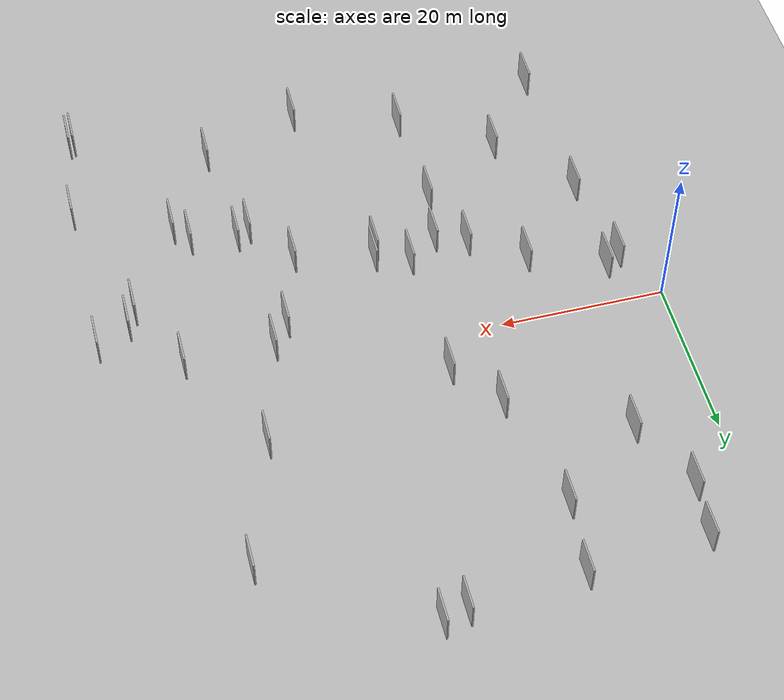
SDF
<?xml version="1.0" encoding="utf-8"?>

<sdf version="1.6">

   <world name="default">

      <gui fullscreen="0">

         <camera name="user_camera">

            <pose>-15 0 4.57585 0 0 0</pose>

            <view_controller>orbit</view_controller>

         </camera>

      </gui>

      <scene>

         <sky>

           <clouds>

             <speed>12</speed>

           </clouds>

         </sky>

         <ambient>0.4 0.4 0.4 1</ambient>

         <background>0.7 0.7 0.7 1</background>

         <shadows>1</shadows>

      </scene>

      <gravity>0 0 -9.8066</gravity>

      <magnetic_field>6e-06 2.3e-05 -4.2e-05</magnetic_field>

      <physics default="0" name="default_physics" type="ode">

         <ode>

            <solver>

               <type>quick</type>

               <iters>10</iters>

               <sor>1.0</sor>

               <use_dynamic_moi_rescaling>0</use_dynamic_moi_rescaling>

            </solver>

            <constraints>

               <cfm>0</cfm>

               <erp>0.2</erp>

               <contact_max_correcting_vel>100</contact_max_correcting_vel>

               <contact_surface_layer>0.001</contact_surface_layer>

            </constraints>

         </ode>

         <max_step_size>0.004</max_step_size>

         <real_time_factor>1</real_time_factor>

         <real_time_update_rate>250</real_time_update_rate>

      </physics>

      <light name="sun" type="directional">

         <cast_shadows>1</cast_shadows>

         <pose>0 0 10 0 0 0</pose>

         <diffuse>0.8 0.8 0.8 1</diffuse>

         <specular>0.2 0.2 0.2 1</specular>

         <attenuation>

            <range>1000</range>

            <constant>0.9</constant>

            <linear>0.01</linear>

            <quadratic>0.001</quadratic>

         </attenuation>

         <direction>-0.5 0.1 -0.9</direction>

      </light>

      <include>

         <name>ground_plane_1</name>

         <uri>model://HANNAS_ground_plane</uri>

         <pose>0 0 0  0 0 0</pose>

      </include>

      <include>

         <name>ground_plane_2</name>

         <uri>model://HANNAS_ground_plane</uri>

         <pose>100 0 0  0 0 0</pose>

      </include>

      <model name="HANNAS_wall_1">

         <static>1</static>

         <pose frame="">67.3452 -6.3178 2.5 0.000000 0.000000 1.570796</pose>

         <link name="link">

            <pose frame="">0 0 2.00 0 0 0</pose>

            <collision name="collision">

               <geometry>

                  <box>

                     <size>4.00 0.2 4.00</size>

                  </box>

               </geometry>

               <max_contacts>10</max_contacts>

               <surface>

                  <contact>

                     <ode/>

                  </contact>

                  <bounce/>

                  <friction>

                     <torsional>

                        <ode/>

                     </torsional>

                     <ode/>

                  </friction>

               </surface>

            </collision>

            <visual name="visual">

               <cast_shadows>0</cast_shadows>

               <geometry>

                  <box>

                     <size>4.00 0.2 4.00</size>

                  </box>

               </geometry>

               <material>

                  <script>

                     <uri>model://HANNAS_wall/materials/scripts</uri>

                     <uri>model://HANNAS_wall/materials/textures</uri>

                     <name>vrc/HANNAS_wall</name>

                  </script>

               </material>

            </visual>

            <self_collide>0</self_collide>

            <enable_wind>0</enable_wind>

            <kinematic>0</kinematic>

         </link>

      </model>

      <model name="HANNAS_wall_2">

         <static>1</static>

         <pose frame="">32.9440 -11.5785 2.5 0.000000 0.000000 1.570796</pose>

         <link name="link">

            <pose frame="">0 0 2.00 0 0 0</pose>

            <collision name="collision">

               <geometry>

                  <box>

                     <size>4.00 0.2 4.00</size>

                  </box>

               </geometry>

               <max_contacts>10</max_contacts>

               <surface>

                  <contact>

                     <ode/>

                  </contact>

                  <bounce/>

                  <friction>

                     <torsional>

                        <ode/>

                     </torsional>

                     <ode/>

                  </friction>

               </surface>

            </collision>

            <visual name="visual">

               <cast_shadows>0</cast_shadows>

               <geometry>

                  <box>

                     <size>4.00 0.2 4.00</size>

                  </box>

               </geometry>

               <material>

                  <script>

                     <uri>model://HANNAS_wall/materials/scripts</uri>

                     <uri>model://HANNAS_wall/materials/textures</uri>

                     <name>vrc/HANNAS_wall</name>

                  </script>

               </material>

            </visual>

            <self_collide>0</self_collide>

            <enable_wind>0</enable_wind>

            <kinematic>0</kinematic>

         </link>

      </model>

      <model name="HANNAS_wall_3">

         <static>1</static>

         <pose frame="">21.5098 36.1997 2.5 0.000000 0.000000 1.570796</pose>

         <link name="link">

            <pose frame="">0 0 2.00 0 0 0</pose>

            <collision name="collision">

               <geometry>

                  <box>

                     <size>4.00 0.2 4.00</size>

                  </box>

               </geometry>

               <max_contacts>10</max_contacts>

               <surface>

                  <contact>

                     <ode/>

                  </contact>

                  <bounce/>

                  <friction>

                     <torsional>

                        <ode/>

                     </torsional>

                     <ode/>

                  </friction>

               </surface>

            </collision>

            <visual name="visual">

               <cast_shadows>0</cast_shadows>

               <geometry>

                  <box>

                     <size>4.00 0.2 4.00</size>

                  </box>

               </geometry>

               <material>

                  <script>

                     <uri>model://HANNAS_wall/materials/scripts</uri>

                     <uri>model://HANNAS_wall/materials/textures</uri>

                     <name>vrc/HANNAS_wall</name>

                  </script>

               </material>

            </visual>

            <self_collide>0</self_collide>

            <enable_wind>0</enable_wind>

            <kinematic>0</kinematic>

         </link>

      </model>

      <model name="HANNAS_wall_4">

         <static>1</static>

         <pose frame="">24.1270 -19.3537 2.5 0.000000 0.000000 1.570796</pose>

         <link name="link">

            <pose frame="">0 0 2.00 0 0 0</pose>

            <collision name="collision">

               <geometry>

                  <box>

                     <size>4.00 0.2 4.00</size>

                  </box>

               </geometry>

               <max_contacts>10</max_contacts>

               <surface>

                  <contact>

                     <ode/>

                  </contact>

                  <bounce/>

                  <friction>

                     <torsional>

                        <ode/>

                     </torsional>

                     <ode/>

                  </friction>

               </surface>

            </collision>

            <visual name="visual">

               <cast_shadows>0</cast_shadows>

               <geometry>

                  <box>

                     <size>4.00 0.2 4.00</size>

                  </box>

               </geometry>

               <material>

                  <script>

                     <uri>model://HANNAS_wall/materials/scripts</uri>

                     <uri>model://HANNAS_wall/materials/textures</uri>

                     <name>vrc/HANNAS_wall</name>

                  </script>

               </material>

            </visual>

            <self_collide>0</self_collide>

            <enable_wind>0</enable_wind>

            <kinematic>0</kinematic>

         </link>

      </model>

      <model name="HANNAS_wall_5">

         <static>1</static>

         <pose frame="">6.2242 -16.3938 2.5 0.000000 0.000000 1.570796</pose>

         <link name="link">

            <pose frame="">0 0 2.00 0 0 0</pose>

            <collision name="collision">

               <geometry>

                  <box>

                     <size>4.00 0.2 4.00</size>

                  </box>

               </geometry>

               <max_contacts>10</max_contacts>

               <surface>

                  <contact>

                     <ode/>

                  </contact>

                  <bounce/>

                  <friction>

                     <torsional>

                        <ode/>

                     </torsional>

                     <ode/>

                  </friction>

               </surface>

            </collision>

            <visual name="visual">

               <cast_shadows>0</cast_shadows>

               <geometry>

                  <box>

                     <size>4.00 0.2 4.00</size>

                  </box>

               </geometry>

               <material>

                  <script>

                     <uri>model://HANNAS_wall/materials/scripts</uri>

                     <uri>model://HANNAS_wall/materials/textures</uri>

                     <name>vrc/HANNAS_wall</name>

                  </script>

               </material>

            </visual>

            <self_collide>0</self_collide>

            <enable_wind>0</enable_wind>

            <kinematic>0</kinematic>

         </link>

      </model>

      <model name="HANNAS_wall_6">

         <static>1</static>

         <pose frame="">10.6288 19.6014 2.5 0.000000 0.000000 1.570796</pose>

         <link name="link">

            <pose frame="">0 0 2.00 0 0 0</pose>

            <collision name="collision">

               <geometry>

                  <box>

                     <size>4.00 0.2 4.00</size>

                  </box>

               </geometry>

               <max_contacts>10</max_contacts>

               <surface>

                  <contact>

                     <ode/>

                  </contact>

                  <bounce/>

                  <friction>

                     <torsional>

                        <ode/>

                     </torsional>

                     <ode/>

                  </friction>

               </surface>

            </collision>

            <visual name="visual">

               <cast_shadows>0</cast_shadows>

               <geometry>

                  <box>

                     <size>4.00 0.2 4.00</size>

                  </box>

               </geometry>

               <material>

                  <script>

                     <uri>model://HANNAS_wall/materials/scripts</uri>

                     <uri>model://HANNAS_wall/materials/textures</uri>

                     <name>vrc/HANNAS_wall</name>

                  </script>

               </material>

            </visual>

            <self_collide>0</self_collide>

            <enable_wind>0</enable_wind>

            <kinematic>0</kinematic>

         </link>

      </model>

      <model name="HANNAS_wall_7">

         <static>1</static>

         <pose frame="">20.6657 27.3038 2.5 0.000000 0.000000 1.570796</pose>

         <link name="link">

            <pose frame="">0 0 2.00 0 0 0</pose>

            <collision name="collision">

               <geometry>

                  <box>

                     <size>4.00 0.2 4.00</size>

                  </box>

               </geometry>

               <max_contacts>10</max_contacts>

               <surface>

                  <contact>

                     <ode/>

                  </contact>

                  <bounce/>

                  <friction>

                     <torsional>

                        <ode/>

                     </torsional>

                     <ode/>

                  </friction>

               </surface>

            </collision>

            <visual name="visual">

               <cast_shadows>0</cast_shadows>

               <geometry>

                  <box>

                     <size>4.00 0.2 4.00</size>

                  </box>

               </geometry>

               <material>

                  <script>

                     <uri>model://HANNAS_wall/materials/scripts</uri>

                     <uri>model://HANNAS_wall/materials/textures</uri>

                     <name>vrc/HANNAS_wall</name>

                  </script>

               </material>

            </visual>

            <self_collide>0</self_collide>

            <enable_wind>0</enable_wind>

            <kinematic>0</kinematic>

         </link>

      </model>

      <model name="HANNAS_wall_8">

         <static>1</static>

         <pose frame="">53.9063 -19.5762 2.5 0.000000 0.000000 1.570796</pose>

         <link name="link">

            <pose frame="">0 0 2.00 0 0 0</pose>

            <collision name="collision">

               <geometry>

                  <box>

                     <size>4.00 0.2 4.00</size>

                  </box>

               </geometry>

               <max_contacts>10</max_contacts>

               <surface>

                  <contact>

                     <ode/>

                  </contact>

                  <bounce/>

                  <friction>

                     <torsional>

                        <ode/>

                     </torsional>

                     <ode/>

                  </friction>

               </surface>

            </collision>

            <visual name="visual">

               <cast_shadows>0</cast_shadows>

               <geometry>

                  <box>

                     <size>4.00 0.2 4.00</size>

                  </box>

               </geometry>

               <material>

                  <script>

                     <uri>model://HANNAS_wall/materials/scripts</uri>

                     <uri>model://HANNAS_wall/materials/textures</uri>

                     <name>vrc/HANNAS_wall</name>

                  </script>

               </material>

            </visual>

            <self_collide>0</self_collide>

            <enable_wind>0</enable_wind>

            <kinematic>0</kinematic>

         </link>

      </model>

      <model name="HANNAS_wall_9">

         <static>1</static>

         <pose frame="">49.3741 -32.3429 2.5 0.000000 0.000000 1.570796</pose>

         <link name="link">

            <pose frame="">0 0 2.00 0 0 0</pose>

            <collision name="collision">

               <geometry>

                  <box>

                     <size>4.00 0.2 4.00</size>

                  </box>

               </geometry>

               <max_contacts>10</max_contacts>

               <surface>

                  <contact>

                     <ode/>

                  </contact>

                  <bounce/>

                  <friction>

                     <torsional>

                        <ode/>

                     </torsional>

                     <ode/>

                  </friction>

               </surface>

            </collision>

            <visual name="visual">

               <cast_shadows>0</cast_shadows>

               <geometry>

                  <box>

                     <size>4.00 0.2 4.00</size>

                  </box>

               </geometry>

               <material>

                  <script>

                     <uri>model://HANNAS_wall/materials/scripts</uri>

                     <uri>model://HANNAS_wall/materials/textures</uri>

                     <name>vrc/HANNAS_wall</name>

                  </script>

               </material>

            </visual>

            <self_collide>0</self_collide>

            <enable_wind>0</enable_wind>

            <kinematic>0</kinematic>

         </link>

      </model>

      <model name="HANNAS_wall_10">

         <static>1</static>

         <pose frame="">51.0092 11.4951 2.5 0.000000 0.000000 1.570796</pose>

         <link name="link">

            <pose frame="">0 0 2.00 0 0 0</pose>

            <collision name="collision">

               <geometry>

                  <box>

                     <size>4.00 0.2 4.00</size>

                  </box>

               </geometry>

               <max_contacts>10</max_contacts>

               <surface>

                  <contact>

                     <ode/>

                  </contact>

                  <bounce/>

                  <friction>

                     <torsional>

                        <ode/>

                     </torsional>

                     <ode/>

                  </friction>

               </surface>

            </collision>

            <visual name="visual">

               <cast_shadows>0</cast_shadows>

               <geometry>

                  <box>

                     <size>4.00 0.2 4.00</size>

                  </box>

               </geometry>

               <material>

                  <script>

                     <uri>model://HANNAS_wall/materials/scripts</uri>

                     <uri>model://HANNAS_wall/materials/textures</uri>

                     <name>vrc/HANNAS_wall</name>

                  </script>

               </material>

            </visual>

            <self_collide>0</self_collide>

            <enable_wind>0</enable_wind>

            <kinematic>0</kinematic>

         </link>

      </model>

      <model name="HANNAS_wall_11">

         <static>1</static>

         <pose frame="">62.2758 -10.6423 2.5 0.000000 0.000000 1.570796</pose>

         <link name="link">

            <pose frame="">0 0 2.00 0 0 0</pose>

            <collision name="collision">

               <geometry>

                  <box>

                     <size>4.00 0.2 4.00</size>

                  </box>

               </geometry>

               <max_contacts>10</max_contacts>

               <surface>

                  <contact>

                     <ode/>

                  </contact>

                  <bounce/>

                  <friction>

                     <torsional>

                        <ode/>

                     </torsional>

                     <ode/>

                  </friction>

               </surface>

            </collision>

            <visual name="visual">

               <cast_shadows>0</cast_shadows>

               <geometry>

                  <box>

                     <size>4.00 0.2 4.00</size>

                  </box>

               </geometry>

               <material>

                  <script>

                     <uri>model://HANNAS_wall/materials/scripts</uri>

                     <uri>model://HANNAS_wall/materials/textures</uri>

                     <name>vrc/HANNAS_wall</name>

                  </script>

               </material>

            </visual>

            <self_collide>0</self_collide>

            <enable_wind>0</enable_wind>

            <kinematic>0</kinematic>

         </link>

      </model>

      <model name="HANNAS_wall_12">

         <static>1</static>

         <pose frame="">14.0313 -25.6488 2.5 0.000000 0.000000 1.570796</pose>

         <link name="link">

            <pose frame="">0 0 2.00 0 0 0</pose>

            <collision name="collision">

               <geometry>

                  <box>

                     <size>4.00 0.2 4.00</size>

                  </box>

               </geometry>

               <max_contacts>10</max_contacts>

               <surface>

                  <contact>

                     <ode/>

                  </contact>

                  <bounce/>

                  <friction>

                     <torsional>

                        <ode/>

                     </torsional>

                     <ode/>

                  </friction>

               </surface>

            </collision>

            <visual name="visual">

               <cast_shadows>0</cast_shadows>

               <geometry>

                  <box>

                     <size>4.00 0.2 4.00</size>

                  </box>

               </geometry>

               <material>

                  <script>

                     <uri>model://HANNAS_wall/materials/scripts</uri>

                     <uri>model://HANNAS_wall/materials/textures</uri>

                     <name>vrc/HANNAS_wall</name>

                  </script>

               </material>

            </visual>

            <self_collide>0</self_collide>

            <enable_wind>0</enable_wind>

            <kinematic>0</kinematic>

         </link>

      </model>

      <model name="HANNAS_wall_13">

         <static>1</static>

         <pose frame="">32.4629 -13.0872 2.5 0.000000 0.000000 1.570796</pose>

         <link name="link">

            <pose frame="">0 0 2.00 0 0 0</pose>

            <collision name="collision">

               <geometry>

                  <box>

                     <size>4.00 0.2 4.00</size>

                  </box>

               </geometry>

               <max_contacts>10</max_contacts>

               <surface>

                  <contact>

                     <ode/>

                  </contact>

                  <bounce/>

                  <friction>

                     <torsional>

                        <ode/>

                     </torsional>

                     <ode/>

                  </friction>

               </surface>

            </collision>

            <visual name="visual">

               <cast_shadows>0</cast_shadows>

               <geometry>

                  <box>

                     <size>4.00 0.2 4.00</size>

                  </box>

               </geometry>

               <material>

                  <script>

                     <uri>model://HANNAS_wall/materials/scripts</uri>

                     <uri>model://HANNAS_wall/materials/textures</uri>

                     <name>vrc/HANNAS_wall</name>

                  </script>

               </material>

            </visual>

            <self_collide>0</self_collide>

            <enable_wind>0</enable_wind>

            <kinematic>0</kinematic>

         </link>

      </model>

      <model name="HANNAS_wall_14">

         <static>1</static>

         <pose frame="">24.7097 -32.2085 2.5 0.000000 0.000000 1.570796</pose>

         <link name="link">

            <pose frame="">0 0 2.00 0 0 0</pose>

            <collision name="collision">

               <geometry>

                  <box>

                     <size>4.00 0.2 4.00</size>

                  </box>

               </geometry>

               <max_contacts>10</max_contacts>

               <surface>

                  <contact>

                     <ode/>

                  </contact>

                  <bounce/>

                  <friction>

                     <torsional>

                        <ode/>

                     </torsional>

                     <ode/>

                  </friction>

               </surface>

            </collision>

            <visual name="visual">

               <cast_shadows>0</cast_shadows>

               <geometry>

                  <box>

                     <size>4.00 0.2 4.00</size>

                  </box>

               </geometry>

               <material>

                  <script>

                     <uri>model://HANNAS_wall/materials/scripts</uri>

                     <uri>model://HANNAS_wall/materials/textures</uri>

                     <name>vrc/HANNAS_wall</name>

                  </script>

               </material>

            </visual>

            <self_collide>0</self_collide>

            <enable_wind>0</enable_wind>

            <kinematic>0</kinematic>

         </link>

      </model>

      <model name="HANNAS_wall_15">

         <static>1</static>

         <pose frame="">37.4799 -36.4075 2.5 0.000000 0.000000 1.570796</pose>

         <link name="link">

            <pose frame="">0 0 2.00 0 0 0</pose>

            <collision name="collision">

               <geometry>

                  <box>

                     <size>4.00 0.2 4.00</size>

                  </box>

               </geometry>

               <max_contacts>10</max_contacts>

               <surface>

                  <contact>

                     <ode/>

                  </contact>

                  <bounce/>

                  <friction>

                     <torsional>

                        <ode/>

                     </torsional>

                     <ode/>

                  </friction>

               </surface>

            </collision>

            <visual name="visual">

               <cast_shadows>0</cast_shadows>

               <geometry>

                  <box>

                     <size>4.00 0.2 4.00</size>

                  </box>

               </geometry>

               <material>

                  <script>

                     <uri>model://HANNAS_wall/materials/scripts</uri>

                     <uri>model://HANNAS_wall/materials/textures</uri>

                     <name>vrc/HANNAS_wall</name>

                  </script>

               </material>

            </visual>

            <self_collide>0</self_collide>

            <enable_wind>0</enable_wind>

            <kinematic>0</kinematic>

         </link>

      </model>

      <model name="HANNAS_wall_16">

         <static>1</static>

         <pose frame="">28.5188 6.7294 2.5 0.000000 0.000000 1.570796</pose>

         <link name="link">

            <pose frame="">0 0 2.00 0 0 0</pose>

            <collision name="collision">

               <geometry>

                  <box>

                     <size>4.00 0.2 4.00</size>

                  </box>

               </geometry>

               <max_contacts>10</max_contacts>

               <surface>

                  <contact>

                     <ode/>

                  </contact>

                  <bounce/>

                  <friction>

                     <torsional>

                        <ode/>

                     </torsional>

                     <ode/>

                  </friction>

               </surface>

            </collision>

            <visual name="visual">

               <cast_shadows>0</cast_shadows>

               <geometry>

                  <box>

                     <size>4.00 0.2 4.00</size>

                  </box>

               </geometry>

               <material>

                  <script>

                     <uri>model://HANNAS_wall/materials/scripts</uri>

                     <uri>model://HANNAS_wall/materials/textures</uri>

                     <name>vrc/HANNAS_wall</name>

                  </script>

               </material>

            </visual>

            <self_collide>0</self_collide>

            <enable_wind>0</enable_wind>

            <kinematic>0</kinematic>

         </link>

      </model>

      <model name="HANNAS_wall_17">

         <static>1</static>

         <pose frame="">65.6974 -38.6444 2.5 0.000000 0.000000 1.570796</pose>

         <link name="link">

            <pose frame="">0 0 2.00 0 0 0</pose>

            <collision name="collision">

               <geometry>

                  <box>

                     <size>4.00 0.2 4.00</size>

                  </box>

               </geometry>

               <max_contacts>10</max_contacts>

               <surface>

                  <contact>

                     <ode/>

                  </contact>

                  <bounce/>

                  <friction>

                     <torsional>

                        <ode/>

                     </torsional>

                     <ode/>

                  </friction>

               </surface>

            </collision>

            <visual name="visual">

               <cast_shadows>0</cast_shadows>

               <geometry>

                  <box>

                     <size>4.00 0.2 4.00</size>

                  </box>

               </geometry>

               <material>

                  <script>

                     <uri>model://HANNAS_wall/materials/scripts</uri>

                     <uri>model://HANNAS_wall/materials/textures</uri>

                     <name>vrc/HANNAS_wall</name>

                  </script>

               </material>

            </visual>

            <self_collide>0</self_collide>

            <enable_wind>0</enable_wind>

            <kinematic>0</kinematic>

         </link>

      </model>

      <model name="HANNAS_wall_18">

         <static>1</static>

         <pose frame="">23.9542 12.7164 2.5 0.000000 0.000000 1.570796</pose>

         <link name="link">

            <pose frame="">0 0 2.00 0 0 0</pose>

            <collision name="collision">

               <geometry>

                  <box>

                     <size>4.00 0.2 4.00</size>

                  </box>

               </geometry>

               <max_contacts>10</max_contacts>

               <surface>

                  <contact>

                     <ode/>

                  </contact>

                  <bounce/>

                  <friction>

                     <torsional>

                        <ode/>

                     </torsional>

                     <ode/>

                  </friction>

               </surface>

            </collision>

            <visual name="visual">

               <cast_shadows>0</cast_shadows>

               <geometry>

                  <box>

                     <size>4.00 0.2 4.00</size>

                  </box>

               </geometry>

               <material>

                  <script>

                     <uri>model://HANNAS_wall/materials/scripts</uri>

                     <uri>model://HANNAS_wall/materials/textures</uri>

                     <name>vrc/HANNAS_wall</name>

                  </script>

               </material>

            </visual>

            <self_collide>0</self_collide>

            <enable_wind>0</enable_wind>

            <kinematic>0</kinematic>

         </link>

      </model>

      <model name="HANNAS_wall_19">

         <static>1</static>

         <pose frame="">25.1887 -12.8074 2.5 0.000000 0.000000 1.570796</pose>

         <link name="link">

            <pose frame="">0 0 2.00 0 0 0</pose>

            <collision name="collision">

               <geometry>

                  <box>

                     <size>4.00 0.2 4.00</size>

                  </box>

               </geometry>

               <max_contacts>10</max_contacts>

               <surface>

                  <contact>

                     <ode/>

                  </contact>

                  <bounce/>

                  <friction>

                     <torsional>

                        <ode/>

                     </torsional>

                     <ode/>

                  </friction>

               </surface>

            </collision>

            <visual name="visual">

               <cast_shadows>0</cast_shadows>

               <geometry>

                  <box>

                     <size>4.00 0.2 4.00</size>

                  </box>

               </geometry>

               <material>

                  <script>

                     <uri>model://HANNAS_wall/materials/scripts</uri>

                     <uri>model://HANNAS_wall/materials/textures</uri>

                     <name>vrc/HANNAS_wall</name>

                  </script>

               </material>

            </visual>

            <self_collide>0</self_collide>

            <enable_wind>0</enable_wind>

            <kinematic>0</kinematic>

         </link>

      </model>

      <model name="HANNAS_wall_20">

         <static>1</static>

         <pose frame="">55.6439 -21.7636 2.5 0.000000 0.000000 1.570796</pose>

         <link name="link">

            <pose frame="">0 0 2.00 0 0 0</pose>

            <collision name="collision">

               <geometry>

                  <box>

                     <size>4.00 0.2 4.00</size>

                  </box>

               </geometry>

               <max_contacts>10</max_contacts>

               <surface>

                  <contact>

                     <ode/>

                  </contact>

                  <bounce/>

                  <friction>

                     <torsional>

                        <ode/>

                     </torsional>

                     <ode/>

                  </friction>

               </surface>

            </collision>

            <visual name="visual">

               <cast_shadows>0</cast_shadows>

               <geometry>

                  <box>

                     <size>4.00 0.2 4.00</size>

                  </box>

               </geometry>

               <material>

                  <script>

                     <uri>model://HANNAS_wall/materials/scripts</uri>

                     <uri>model://HANNAS_wall/materials/textures</uri>

                     <name>vrc/HANNAS_wall</name>

                  </script>

               </material>

            </visual>

            <self_collide>0</self_collide>

            <enable_wind>0</enable_wind>

            <kinematic>0</kinematic>

         </link>

      </model>

      <model name="HANNAS_wall_21">

         <static>1</static>

         <pose frame="">7.2097 34.9283 2.5 0.000000 0.000000 1.570796</pose>

         <link name="link">

            <pose frame="">0 0 2.00 0 0 0</pose>

            <collision name="collision">

               <geometry>

                  <box>

                     <size>4.00 0.2 4.00</size>

                  </box>

               </geometry>

               <max_contacts>10</max_contacts>

               <surface>

                  <contact>

                     <ode/>

                  </contact>

                  <bounce/>

                  <friction>

                     <torsional>

                        <ode/>

                     </torsional>

                     <ode/>

                  </friction>

               </surface>

            </collision>

            <visual name="visual">

               <cast_shadows>0</cast_shadows>

               <geometry>

                  <box>

                     <size>4.00 0.2 4.00</size>

                  </box>

               </geometry>

               <material>

                  <script>

                     <uri>model://HANNAS_wall/materials/scripts</uri>

                     <uri>model://HANNAS_wall/materials/textures</uri>

                     <name>vrc/HANNAS_wall</name>

                  </script>

               </material>

            </visual>

            <self_collide>0</self_collide>

            <enable_wind>0</enable_wind>

            <kinematic>0</kinematic>

         </link>

      </model>

      <model name="HANNAS_wall_22">

         <static>1</static>

         <pose frame="">6.9272 -35.2239 2.5 0.000000 0.000000 1.570796</pose>

         <link name="link">

            <pose frame="">0 0 2.00 0 0 0</pose>

            <collision name="collision">

               <geometry>

                  <box>

                     <size>4.00 0.2 4.00</size>

                  </box>

               </geometry>

               <max_contacts>10</max_contacts>

               <surface>

                  <contact>

                     <ode/>

                  </contact>

                  <bounce/>

                  <friction>

                     <torsional>

                        <ode/>

                     </torsional>

                     <ode/>

                  </friction>

               </surface>

            </collision>

            <visual name="visual">

               <cast_shadows>0</cast_shadows>

               <geometry>

                  <box>

                     <size>4.00 0.2 4.00</size>

                  </box>

               </geometry>

               <material>

                  <script>

                     <uri>model://HANNAS_wall/materials/scripts</uri>

                     <uri>model://HANNAS_wall/materials/textures</uri>

                     <name>vrc/HANNAS_wall</name>

                  </script>

               </material>

            </visual>

            <self_collide>0</self_collide>

            <enable_wind>0</enable_wind>

            <kinematic>0</kinematic>

         </link>

      </model>

      <model name="HANNAS_wall_23">

         <static>1</static>

         <pose frame="">37.9741 38.0724 2.5 0.000000 0.000000 1.570796</pose>

         <link name="link">

            <pose frame="">0 0 2.00 0 0 0</pose>

            <collision name="collision">

               <geometry>

                  <box>

                     <size>4.00 0.2 4.00</size>

                  </box>

               </geometry>

               <max_contacts>10</max_contacts>

               <surface>

                  <contact>

                     <ode/>

                  </contact>

                  <bounce/>

                  <friction>

                     <torsional>

                        <ode/>

                     </torsional>

                     <ode/>

                  </friction>

               </surface>

            </collision>

            <visual name="visual">

               <cast_shadows>0</cast_shadows>

               <geometry>

                  <box>

                     <size>4.00 0.2 4.00</size>

                  </box>

               </geometry>

               <material>

                  <script>

                     <uri>model://HANNAS_wall/materials/scripts</uri>

                     <uri>model://HANNAS_wall/materials/textures</uri>

                     <name>vrc/HANNAS_wall</name>

                  </script>

               </material>

            </visual>

            <self_collide>0</self_collide>

            <enable_wind>0</enable_wind>

            <kinematic>0</kinematic>

         </link>

      </model>

      <model name="HANNAS_wall_24">

         <static>1</static>

         <pose frame="">6.1774 -3.7912 2.5 0.000000 0.000000 1.570796</pose>

         <link name="link">

            <pose frame="">0 0 2.00 0 0 0</pose>

            <collision name="collision">

               <geometry>

                  <box>

                     <size>4.00 0.2 4.00</size>

                  </box>

               </geometry>

               <max_contacts>10</max_contacts>

               <surface>

                  <contact>

                     <ode/>

                  </contact>

                  <bounce/>

                  <friction>

                     <torsional>

                        <ode/>

                     </torsional>

                     <ode/>

                  </friction>

               </surface>

            </collision>

            <visual name="visual">

               <cast_shadows>0</cast_shadows>

               <geometry>

                  <box>

                     <size>4.00 0.2 4.00</size>

                  </box>

               </geometry>

               <material>

                  <script>

                     <uri>model://HANNAS_wall/materials/scripts</uri>

                     <uri>model://HANNAS_wall/materials/textures</uri>

                     <name>vrc/HANNAS_wall</name>

                  </script>

               </material>

            </visual>

            <self_collide>0</self_collide>

            <enable_wind>0</enable_wind>

            <kinematic>0</kinematic>

         </link>

      </model>

      <model name="HANNAS_wall_25">

         <static>1</static>

         <pose frame="">56.0777 26.7666 2.5 0.000000 0.000000 1.570796</pose>

         <link name="link">

            <pose frame="">0 0 2.00 0 0 0</pose>

            <collision name="collision">

               <geometry>

                  <box>

                     <size>4.00 0.2 4.00</size>

                  </box>

               </geometry>

               <max_contacts>10</max_contacts>

               <surface>

                  <contact>

                     <ode/>

                  </contact>

                  <bounce/>

                  <friction>

                     <torsional>

                        <ode/>

                     </torsional>

                     <ode/>

                  </friction>

               </surface>

            </collision>

            <visual name="visual">

               <cast_shadows>0</cast_shadows>

               <geometry>

                  <box>

                     <size>4.00 0.2 4.00</size>

                  </box>

               </geometry>

               <material>

                  <script>

                     <uri>model://HANNAS_wall/materials/scripts</uri>

                     <uri>model://HANNAS_wall/materials/textures</uri>

                     <name>vrc/HANNAS_wall</name>

                  </script>

               </material>

            </visual>

            <self_collide>0</self_collide>

            <enable_wind>0</enable_wind>

            <kinematic>0</kinematic>

         </link>

      </model>

      <model name="HANNAS_wall_26">

         <static>1</static>

         <pose frame="">15.1895 -7.0491 2.5 0.000000 0.000000 1.570796</pose>

         <link name="link">

            <pose frame="">0 0 2.00 0 0 0</pose>

            <collision name="collision">

               <geometry>

                  <box>

                     <size>4.00 0.2 4.00</size>

                  </box>

               </geometry>

               <max_contacts>10</max_contacts>

               <surface>

                  <contact>

                     <ode/>

                  </contact>

                  <bounce/>

                  <friction>

                     <torsional>

                        <ode/>

                     </torsional>

                     <ode/>

                  </friction>

               </surface>

            </collision>

            <visual name="visual">

               <cast_shadows>0</cast_shadows>

               <geometry>

                  <box>

                     <size>4.00 0.2 4.00</size>

                  </box>

               </geometry>

               <material>

                  <script>

                     <uri>model://HANNAS_wall/materials/scripts</uri>

                     <uri>model://HANNAS_wall/materials/textures</uri>

                     <name>vrc/HANNAS_wall</name>

                  </script>

               </material>

            </visual>

            <self_collide>0</self_collide>

            <enable_wind>0</enable_wind>

            <kinematic>0</kinematic>

         </link>

      </model>

      <model name="HANNAS_wall_27">

         <static>1</static>

         <pose frame="">63.3381 -8.4888 2.5 0.000000 0.000000 1.570796</pose>

         <link name="link">

            <pose frame="">0 0 2.00 0 0 0</pose>

            <collision name="collision">

               <geometry>

                  <box>

                     <size>4.00 0.2 4.00</size>

                  </box>

               </geometry>

               <max_contacts>10</max_contacts>

               <surface>

                  <contact>

                     <ode/>

                  </contact>

                  <bounce/>

                  <friction>

                     <torsional>

                        <ode/>

                     </torsional>

                     <ode/>

                  </friction>

               </surface>

            </collision>

            <visual name="visual">

               <cast_shadows>0</cast_shadows>

               <geometry>

                  <box>

                     <size>4.00 0.2 4.00</size>

                  </box>

               </geometry>

               <material>

                  <script>

                     <uri>model://HANNAS_wall/materials/scripts</uri>

                     <uri>model://HANNAS_wall/materials/textures</uri>

                     <name>vrc/HANNAS_wall</name>

                  </script>

               </material>

            </visual>

            <self_collide>0</self_collide>

            <enable_wind>0</enable_wind>

            <kinematic>0</kinematic>

         </link>

      </model>

      <model name="HANNAS_wall_28">

         <static>1</static>

         <pose frame="">42.3838 -13.9032 2.5 0.000000 0.000000 1.570796</pose>

         <link name="link">

            <pose frame="">0 0 2.00 0 0 0</pose>

            <collision name="collision">

               <geometry>

                  <box>

                     <size>4.00 0.2 4.00</size>

                  </box>

               </geometry>

               <max_contacts>10</max_contacts>

               <surface>

                  <contact>

                     <ode/>

                  </contact>

                  <bounce/>

                  <friction>

                     <torsional>

                        <ode/>

                     </torsional>

                     <ode/>

                  </friction>

               </surface>

            </collision>

            <visual name="visual">

               <cast_shadows>0</cast_shadows>

               <geometry>

                  <box>

                     <size>4.00 0.2 4.00</size>

                  </box>

               </geometry>

               <material>

                  <script>

                     <uri>model://HANNAS_wall/materials/scripts</uri>

                     <uri>model://HANNAS_wall/materials/textures</uri>

                     <name>vrc/HANNAS_wall</name>

                  </script>

               </material>

            </visual>

            <self_collide>0</self_collide>

            <enable_wind>0</enable_wind>

            <kinematic>0</kinematic>

         </link>

      </model>

      <model name="HANNAS_wall_29">

         <static>1</static>

         <pose frame="">21.4581 -11.2559 2.5 0.000000 0.000000 1.570796</pose>

         <link name="link">

            <pose frame="">0 0 2.00 0 0 0</pose>

            <collision name="collision">

               <geometry>

                  <box>

                     <size>4.00 0.2 4.00</size>

                  </box>

               </geometry>

               <max_contacts>10</max_contacts>

               <surface>

                  <contact>

                     <ode/>

                  </contact>

                  <bounce/>

                  <friction>

                     <torsional>

                        <ode/>

                     </torsional>

                     <ode/>

                  </friction>

               </surface>

            </collision>

            <visual name="visual">

               <cast_shadows>0</cast_shadows>

               <geometry>

                  <box>

                     <size>4.00 0.2 4.00</size>

                  </box>

               </geometry>

               <material>

                  <script>

                     <uri>model://HANNAS_wall/materials/scripts</uri>

                     <uri>model://HANNAS_wall/materials/textures</uri>

                     <name>vrc/HANNAS_wall</name>

                  </script>

               </material>

            </visual>

            <self_collide>0</self_collide>

            <enable_wind>0</enable_wind>

            <kinematic>0</kinematic>

         </link>

      </model>

      <model name="HANNAS_wall_30">

         <static>1</static>

         <pose frame="">45.2827 -4.4787 2.5 0.000000 0.000000 1.570796</pose>

         <link name="link">

            <pose frame="">0 0 2.00 0 0 0</pose>

            <collision name="collision">

               <geometry>

                  <box>

                     <size>4.00 0.2 4.00</size>

                  </box>

               </geometry>

               <max_contacts>10</max_contacts>

               <surface>

                  <contact>

                     <ode/>

                  </contact>

                  <bounce/>

                  <friction>

                     <torsional>

                        <ode/>

                     </torsional>

                     <ode/>

                  </friction>

               </surface>

            </collision>

            <visual name="visual">

               <cast_shadows>0</cast_shadows>

               <geometry>

                  <box>

                     <size>4.00 0.2 4.00</size>

                  </box>

               </geometry>

               <material>

                  <script>

                     <uri>model://HANNAS_wall/materials/scripts</uri>

                     <uri>model://HANNAS_wall/materials/textures</uri>

                     <name>vrc/HANNAS_wall</name>

                  </script>

               </material>

            </visual>

            <self_collide>0</self_collide>

            <enable_wind>0</enable_wind>

            <kinematic>0</kinematic>

         </link>

      </model>

      <model name="HANNAS_wall_31">

         <static>1</static>

         <pose frame="">47.3732 -1.5423 2.5 0.000000 0.000000 1.570796</pose>

         <link name="link">

            <pose frame="">0 0 2.00 0 0 0</pose>

            <collision name="collision">

               <geometry>

                  <box>

                     <size>4.00 0.2 4.00</size>

                  </box>

               </geometry>

               <max_contacts>10</max_contacts>

               <surface>

                  <contact>

                     <ode/>

                  </contact>

                  <bounce/>

                  <friction>

                     <torsional>

                        <ode/>

                     </torsional>

                     <ode/>

                  </friction>

               </surface>

            </collision>

            <visual name="visual">

               <cast_shadows>0</cast_shadows>

               <geometry>

                  <box>

                     <size>4.00 0.2 4.00</size>

                  </box>

               </geometry>

               <material>

                  <script>

                     <uri>model://HANNAS_wall/materials/scripts</uri>

                     <uri>model://HANNAS_wall/materials/textures</uri>

                     <name>vrc/HANNAS_wall</name>

                  </script>

               </material>

            </visual>

            <self_collide>0</self_collide>

            <enable_wind>0</enable_wind>

            <kinematic>0</kinematic>

         </link>

      </model>

      <model name="HANNAS_wall_32">

         <static>1</static>

         <pose frame="">28.8324 -10.0257 2.5 0.000000 0.000000 1.570796</pose>

         <link name="link">

            <pose frame="">0 0 2.00 0 0 0</pose>

            <collision name="collision">

               <geometry>

                  <box>

                     <size>4.00 0.2 4.00</size>

                  </box>

               </geometry>

               <max_contacts>10</max_contacts>

               <surface>

                  <contact>

                     <ode/>

                  </contact>

                  <bounce/>

                  <friction>

                     <torsional>

                        <ode/>

                     </torsional>

                     <ode/>

                  </friction>

               </surface>

            </collision>

            <visual name="visual">

               <cast_shadows>0</cast_shadows>

               <geometry>

                  <box>

                     <size>4.00 0.2 4.00</size>

                  </box>

               </geometry>

               <material>

                  <script>

                     <uri>model://HANNAS_wall/materials/scripts</uri>

                     <uri>model://HANNAS_wall/materials/textures</uri>

                     <name>vrc/HANNAS_wall</name>

                  </script>

               </material>

            </visual>

            <self_collide>0</self_collide>

            <enable_wind>0</enable_wind>

            <kinematic>0</kinematic>

         </link>

      </model>

      <model name="HANNAS_wall_33">

         <static>1</static>

         <pose frame="">67.0963 -27.0000 2.5 0.000000 0.000000 1.570796</pose>

         <link name="link">

            <pose frame="">0 0 2.00 0 0 0</pose>

            <collision name="collision">

               <geometry>

                  <box>

                     <size>4.00 0.2 4.00</size>

                  </box>

               </geometry>

               <max_contacts>10</max_contacts>

               <surface>

                  <contact>

                     <ode/>

                  </contact>

                  <bounce/>

                  <friction>

                     <torsional>

                        <ode/>

                     </torsional>

                     <ode/>

                  </friction>

               </surface>

            </collision>

            <visual name="visual">

               <cast_shadows>0</cast_shadows>

               <geometry>

                  <box>

                     <size>4.00 0.2 4.00</size>

                  </box>

               </geometry>

               <material>

                  <script>

                     <uri>model://HANNAS_wall/materials/scripts</uri>

                     <uri>model://HANNAS_wall/materials/textures</uri>

                     <name>vrc/HANNAS_wall</name>

                  </script>

               </material>

            </visual>

            <self_collide>0</self_collide>

            <enable_wind>0</enable_wind>

            <kinematic>0</kinematic>

         </link>

      </model>

      <model name="HANNAS_wall_34">

         <static>1</static>

         <pose frame="">35.0268 37.2952 2.5 0.000000 0.000000 1.570796</pose>

         <link name="link">

            <pose frame="">0 0 2.00 0 0 0</pose>

            <collision name="collision">

               <geometry>

                  <box>

                     <size>4.00 0.2 4.00</size>

                  </box>

               </geometry>

               <max_contacts>10</max_contacts>

               <surface>

                  <contact>

                     <ode/>

                  </contact>

                  <bounce/>

                  <friction>

                     <torsional>

                        <ode/>

                     </torsional>

                     <ode/>

                  </friction>

               </surface>

            </collision>

            <visual name="visual">

               <cast_shadows>0</cast_shadows>

               <geometry>

                  <box>

                     <size>4.00 0.2 4.00</size>

                  </box>

               </geometry>

               <material>

                  <script>

                     <uri>model://HANNAS_wall/materials/scripts</uri>

                     <uri>model://HANNAS_wall/materials/textures</uri>

                     <name>vrc/HANNAS_wall</name>

                  </script>

               </material>

            </visual>

            <self_collide>0</self_collide>

            <enable_wind>0</enable_wind>

            <kinematic>0</kinematic>

         </link>

      </model>

      <model name="HANNAS_wall_35">

         <static>1</static>

         <pose frame="">65.1453 -38.9315 2.5 0.000000 0.000000 1.570796</pose>

         <link name="link">

            <pose frame="">0 0 2.00 0 0 0</pose>

            <collision name="collision">

               <geometry>

                  <box>

                     <size>4.00 0.2 4.00</size>

                  </box>

               </geometry>

               <max_contacts>10</max_contacts>

               <surface>

                  <contact>

                     <ode/>

                  </contact>

                  <bounce/>

                  <friction>

                     <torsional>

                        <ode/>

                     </torsional>

                     <ode/>

                  </friction>

               </surface>

            </collision>

            <visual name="visual">

               <cast_shadows>0</cast_shadows>

               <geometry>

                  <box>

                     <size>4.00 0.2 4.00</size>

                  </box>

               </geometry>

               <material>

                  <script>

                     <uri>model://HANNAS_wall/materials/scripts</uri>

                     <uri>model://HANNAS_wall/materials/textures</uri>

                     <name>vrc/HANNAS_wall</name>

                  </script>

               </material>

            </visual>

            <self_collide>0</self_collide>

            <enable_wind>0</enable_wind>

            <kinematic>0</kinematic>

         </link>

      </model>

      <model name="HANNAS_wall_36">

         <static>1</static>

         <pose frame="">4.3324 -5.0319 2.5 0.000000 0.000000 1.570796</pose>

         <link name="link">

            <pose frame="">0 0 2.00 0 0 0</pose>

            <collision name="collision">

               <geometry>

                  <box>

                     <size>4.00 0.2 4.00</size>

                  </box>

               </geometry>

               <max_contacts>10</max_contacts>

               <surface>

                  <contact>

                     <ode/>

                  </contact>

                  <bounce/>

                  <friction>

                     <torsional>

                        <ode/>

                     </torsional>

                     <ode/>

                  </friction>

               </surface>

            </collision>

            <visual name="visual">

               <cast_shadows>0</cast_shadows>

               <geometry>

                  <box>

                     <size>4.00 0.2 4.00</size>

                  </box>

               </geometry>

               <material>

                  <script>

                     <uri>model://HANNAS_wall/materials/scripts</uri>

                     <uri>model://HANNAS_wall/materials/textures</uri>

                     <name>vrc/HANNAS_wall</name>

                  </script>

               </material>

            </visual>

            <self_collide>0</self_collide>

            <enable_wind>0</enable_wind>

            <kinematic>0</kinematic>

         </link>

      </model>

      <model name="HANNAS_wall_37">

         <static>1</static>

         <pose frame="">6.5242 28.5190 2.5 0.000000 0.000000 1.570796</pose>

         <link name="link">

            <pose frame="">0 0 2.00 0 0 0</pose>

            <collision name="collision">

               <geometry>

                  <box>

                     <size>4.00 0.2 4.00</size>

                  </box>

               </geometry>

               <max_contacts>10</max_contacts>

               <surface>

                  <contact>

                     <ode/>

                  </contact>

                  <bounce/>

                  <friction>

                     <torsional>

                        <ode/>

                     </torsional>

                     <ode/>

                  </friction>

               </surface>

            </collision>

            <visual name="visual">

               <cast_shadows>0</cast_shadows>

               <geometry>

                  <box>

                     <size>4.00 0.2 4.00</size>

                  </box>

               </geometry>

               <material>

                  <script>

                     <uri>model://HANNAS_wall/materials/scripts</uri>

                     <uri>model://HANNAS_wall/materials/textures</uri>

                     <name>vrc/HANNAS_wall</name>

                  </script>

               </material>

            </visual>

            <self_collide>0</self_collide>

            <enable_wind>0</enable_wind>

            <kinematic>0</kinematic>

         </link>

      </model>

      <model name="HANNAS_wall_38">

         <static>1</static>

         <pose frame="">58.1100 -1.5887 2.5 0.000000 0.000000 1.570796</pose>

         <link name="link">

            <pose frame="">0 0 2.00 0 0 0</pose>

            <collision name="collision">

               <geometry>

                  <box>

                     <size>4.00 0.2 4.00</size>

                  </box>

               </geometry>

               <max_contacts>10</max_contacts>

               <surface>

                  <contact>

                     <ode/>

                  </contact>

                  <bounce/>

                  <friction>

                     <torsional>

                        <ode/>

                     </torsional>

                     <ode/>

                  </friction>

               </surface>

            </collision>

            <visual name="visual">

               <cast_shadows>0</cast_shadows>

               <geometry>

                  <box>

                     <size>4.00 0.2 4.00</size>

                  </box>

               </geometry>

               <material>

                  <script>

                     <uri>model://HANNAS_wall/materials/scripts</uri>

                     <uri>model://HANNAS_wall/materials/textures</uri>

                     <name>vrc/HANNAS_wall</name>

                  </script>

               </material>

            </visual>

            <self_collide>0</self_collide>

            <enable_wind>0</enable_wind>

            <kinematic>0</kinematic>

         </link>

      </model>

      <model name="HANNAS_wall_39">

         <static>1</static>

         <pose frame="">46.7117 -19.5435 2.5 0.000000 0.000000 1.570796</pose>

         <link name="link">

            <pose frame="">0 0 2.00 0 0 0</pose>

            <collision name="collision">

               <geometry>

                  <box>

                     <size>4.00 0.2 4.00</size>

                  </box>

               </geometry>

               <max_contacts>10</max_contacts>

               <surface>

                  <contact>

                     <ode/>

                  </contact>

                  <bounce/>

                  <friction>

                     <torsional>

                        <ode/>

                     </torsional>

                     <ode/>

                  </friction>

               </surface>

            </collision>

            <visual name="visual">

               <cast_shadows>0</cast_shadows>

               <geometry>

                  <box>

                     <size>4.00 0.2 4.00</size>

                  </box>

               </geometry>

               <material>

                  <script>

                     <uri>model://HANNAS_wall/materials/scripts</uri>

                     <uri>model://HANNAS_wall/materials/textures</uri>

                     <name>vrc/HANNAS_wall</name>

                  </script>

               </material>

            </visual>

            <self_collide>0</self_collide>

            <enable_wind>0</enable_wind>

            <kinematic>0</kinematic>

         </link>

      </model>

      <model name="HANNAS_wall_40">

         <static>1</static>

         <pose frame="">48.2930 -18.7058 2.5 0.000000 0.000000 1.570796</pose>

         <link name="link">

            <pose frame="">0 0 2.00 0 0 0</pose>

            <collision name="collision">

               <geometry>

                  <box>

                     <size>4.00 0.2 4.00</size>

                  </box>

               </geometry>

               <max_contacts>10</max_contacts>

               <surface>

                  <contact>

                     <ode/>

                  </contact>

                  <bounce/>

                  <friction>

                     <torsional>

                        <ode/>

                     </torsional>

                     <ode/>

                  </friction>

               </surface>

            </collision>

            <visual name="visual">

               <cast_shadows>0</cast_shadows>

               <geometry>

                  <box>

                     <size>4.00 0.2 4.00</size>

                  </box>

               </geometry>

               <material>

                  <script>

                     <uri>model://HANNAS_wall/materials/scripts</uri>

                     <uri>model://HANNAS_wall/materials/textures</uri>

                     <name>vrc/HANNAS_wall</name>

                  </script>

               </material>

            </visual>

            <self_collide>0</self_collide>

            <enable_wind>0</enable_wind>

            <kinematic>0</kinematic>

         </link>

      </model>

   </world>

</sdf>
